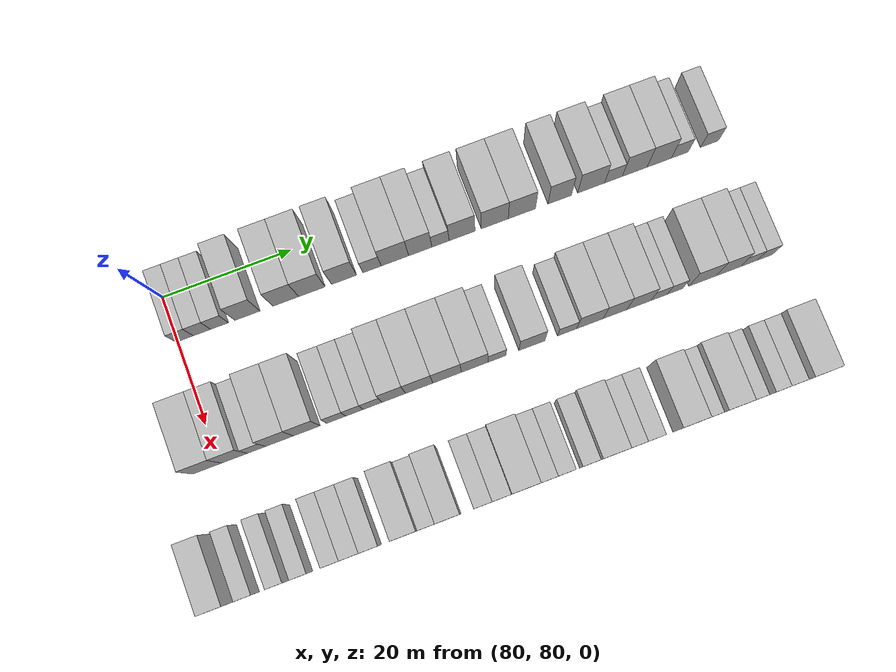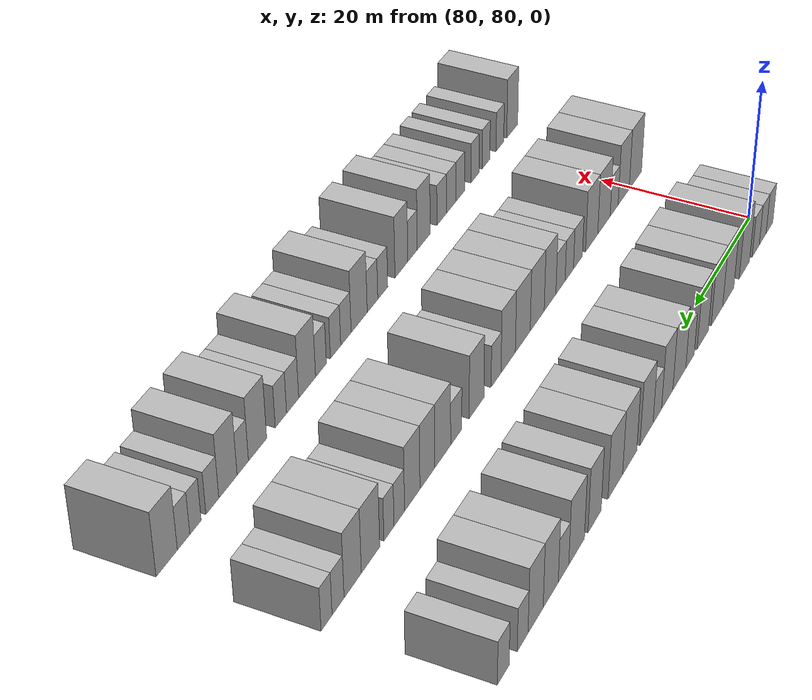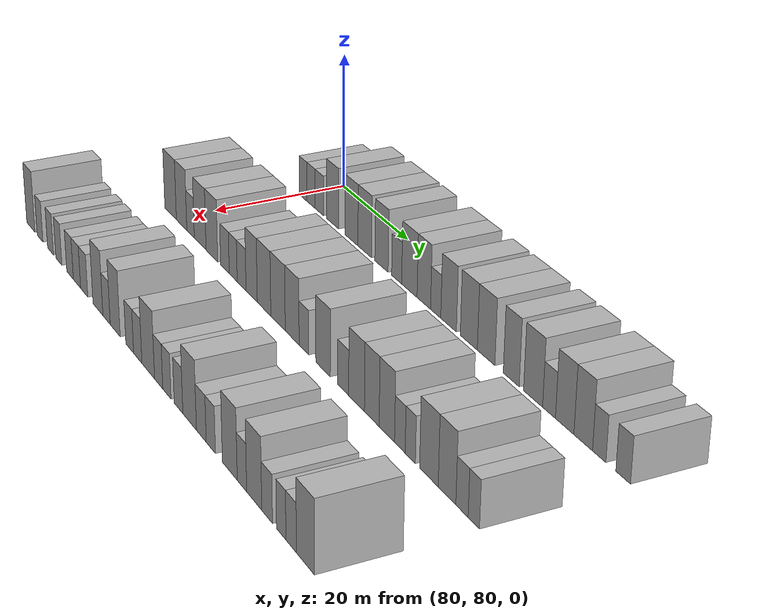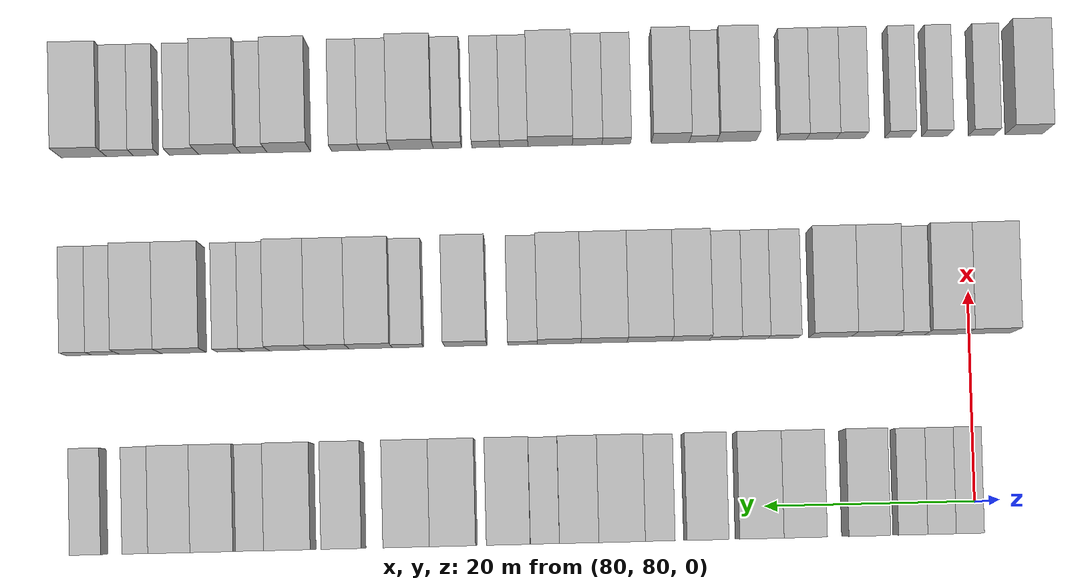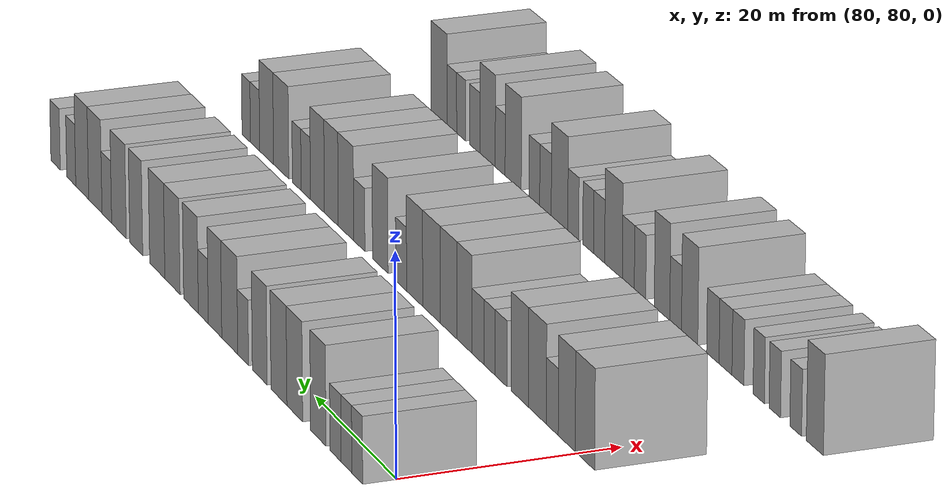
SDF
<sdf version="1.6">
 <world name="default">
  <model name="building_628">
   <static>1</static>
   <pose>82.0000 81.1683 0 0.000000 0.000000 0.000000</pose>
   <link name="link">
    <pose>0 0 3.00 0 0 0</pose>
    <collision name="collision"><geometry><box><size>10.0000 2.6356 6.0000</size></box></geometry></collision>
    <visual name="visual">
     <cast_shadows>0</cast_shadows>
     <geometry><box><size>10.0000 2.6356 6.0000</size></box></geometry>
     <material>
      <script>
       <uri>model://HANNAS_wall/materials/scripts</uri>
       <uri>model://HANNAS_wall/materials/textures</uri>
       <name>vrc/HANNAS_wall</name>
      </script>
     </material>
    </visual>
   </link>
  </model>
  <model name="building_629">
   <static>1</static>
   <pose>82.0000 83.8183 0 0.000000 0.000000 0.000000</pose>
   <link name="link">
    <pose>0 0 3.00 0 0 0</pose>
    <collision name="collision"><geometry><box><size>10.0000 2.6646 6.0000</size></box></geometry></collision>
    <visual name="visual">
     <cast_shadows>0</cast_shadows>
     <geometry><box><size>10.0000 2.6646 6.0000</size></box></geometry>
     <material>
      <script>
       <uri>model://HANNAS_wall/materials/scripts</uri>
       <uri>model://HANNAS_wall/materials/textures</uri>
       <name>vrc/HANNAS_wall</name>
      </script>
     </material>
    </visual>
   </link>
  </model>
  <model name="building_630">
   <static>1</static>
   <pose>82.0000 86.5230 0 0.000000 0.000000 0.000000</pose>
   <link name="link">
    <pose>0 0 3.00 0 0 0</pose>
    <collision name="collision"><geometry><box><size>10.0000 2.7448 6.0000</size></box></geometry></collision>
    <visual name="visual">
     <cast_shadows>0</cast_shadows>
     <geometry><box><size>10.0000 2.7448 6.0000</size></box></geometry>
     <material>
      <script>
       <uri>model://HANNAS_wall/materials/scripts</uri>
       <uri>model://HANNAS_wall/materials/textures</uri>
       <name>vrc/HANNAS_wall</name>
      </script>
     </material>
    </visual>
   </link>
  </model>
  <model name="building_631">
   <static>1</static>
   <pose>82.0000 90.8380 0 0.000000 0.000000 0.000000</pose>
   <link name="link">
    <pose>0 0 4.50 0 0 0</pose>
    <collision name="collision"><geometry><box><size>10.0000 3.8850 9.0000</size></box></geometry></collision>
    <visual name="visual">
     <cast_shadows>0</cast_shadows>
     <geometry><box><size>10.0000 3.8850 9.0000</size></box></geometry>
     <material>
      <script>
       <uri>model://HANNAS_wall/materials/scripts</uri>
       <uri>model://HANNAS_wall/materials/textures</uri>
       <name>vrc/HANNAS_wall</name>
      </script>
     </material>
    </visual>
   </link>
  </model>
  <model name="building_632">
   <static>1</static>
   <pose>82.0000 96.7917 0 0.000000 0.000000 0.000000</pose>
   <link name="link">
    <pose>0 0 4.50 0 0 0</pose>
    <collision name="collision"><geometry><box><size>10.0000 4.0225 9.0000</size></box></geometry></collision>
    <visual name="visual">
     <cast_shadows>0</cast_shadows>
     <geometry><box><size>10.0000 4.0225 9.0000</size></box></geometry>
     <material>
      <script>
       <uri>model://HANNAS_wall/materials/scripts</uri>
       <uri>model://HANNAS_wall/materials/textures</uri>
       <name>vrc/HANNAS_wall</name>
      </script>
     </material>
    </visual>
   </link>
  </model>
  <model name="building_633">
   <static>1</static>
   <pose>82.0000 100.8646 0 0.000000 0.000000 0.000000</pose>
   <link name="link">
    <pose>0 0 4.50 0 0 0</pose>
    <collision name="collision"><geometry><box><size>10.0000 4.1232 9.0000</size></box></geometry></collision>
    <visual name="visual">
     <cast_shadows>0</cast_shadows>
     <geometry><box><size>10.0000 4.1232 9.0000</size></box></geometry>
     <material>
      <script>
       <uri>model://HANNAS_wall/materials/scripts</uri>
       <uri>model://HANNAS_wall/materials/textures</uri>
       <name>vrc/HANNAS_wall</name>
      </script>
     </material>
    </visual>
   </link>
  </model>
  <model name="building_634">
   <static>1</static>
   <pose>82.0000 105.8771 0 0.000000 0.000000 0.000000</pose>
   <link name="link">
    <pose>0 0 4.50 0 0 0</pose>
    <collision name="collision"><geometry><box><size>10.0000 3.9018 9.0000</size></box></geometry></collision>
    <visual name="visual">
     <cast_shadows>0</cast_shadows>
     <geometry><box><size>10.0000 3.9018 9.0000</size></box></geometry>
     <material>
      <script>
       <uri>model://HANNAS_wall/materials/scripts</uri>
       <uri>model://HANNAS_wall/materials/textures</uri>
       <name>vrc/HANNAS_wall</name>
      </script>
     </material>
    </visual>
   </link>
  </model>
  <model name="building_635">
   <static>1</static>
   <pose>82.0000 110.2610 0 0.000000 0.000000 0.000000</pose>
   <link name="link">
    <pose>0 0 3.00 0 0 0</pose>
    <collision name="collision"><geometry><box><size>10.0000 2.8659 6.0000</size></box></geometry></collision>
    <visual name="visual">
     <cast_shadows>0</cast_shadows>
     <geometry><box><size>10.0000 2.8659 6.0000</size></box></geometry>
     <material>
      <script>
       <uri>model://HANNAS_wall/materials/scripts</uri>
       <uri>model://HANNAS_wall/materials/textures</uri>
       <name>vrc/HANNAS_wall</name>
      </script>
     </material>
    </visual>
   </link>
  </model>
  <model name="building_636">
   <static>1</static>
   <pose>82.0000 113.8494 0 0.000000 0.000000 0.000000</pose>
   <link name="link">
    <pose>0 0 4.50 0 0 0</pose>
    <collision name="collision"><geometry><box><size>10.0000 4.3110 9.0000</size></box></geometry></collision>
    <visual name="visual">
     <cast_shadows>0</cast_shadows>
     <geometry><box><size>10.0000 4.3110 9.0000</size></box></geometry>
     <material>
      <script>
       <uri>model://HANNAS_wall/materials/scripts</uri>
       <uri>model://HANNAS_wall/materials/textures</uri>
       <name>vrc/HANNAS_wall</name>
      </script>
     </material>
    </visual>
   </link>
  </model>
  <model name="building_637">
   <static>1</static>
   <pose>82.0000 117.8396 0 0.000000 0.000000 0.000000</pose>
   <link name="link">
    <pose>0 0 4.50 0 0 0</pose>
    <collision name="collision"><geometry><box><size>10.0000 3.6695 9.0000</size></box></geometry></collision>
    <visual name="visual">
     <cast_shadows>0</cast_shadows>
     <geometry><box><size>10.0000 3.6695 9.0000</size></box></geometry>
     <material>
      <script>
       <uri>model://HANNAS_wall/materials/scripts</uri>
       <uri>model://HANNAS_wall/materials/textures</uri>
       <name>vrc/HANNAS_wall</name>
      </script>
     </material>
    </visual>
   </link>
  </model>
  <model name="building_638">
   <static>1</static>
   <pose>82.0000 121.0335 0 0.000000 0.000000 0.000000</pose>
   <link name="link">
    <pose>0 0 3.00 0 0 0</pose>
    <collision name="collision"><geometry><box><size>10.0000 2.7182 6.0000</size></box></geometry></collision>
    <visual name="visual">
     <cast_shadows>0</cast_shadows>
     <geometry><box><size>10.0000 2.7182 6.0000</size></box></geometry>
     <material>
      <script>
       <uri>model://HANNAS_wall/materials/scripts</uri>
       <uri>model://HANNAS_wall/materials/textures</uri>
       <name>vrc/HANNAS_wall</name>
      </script>
     </material>
    </visual>
   </link>
  </model>
  <model name="building_639">
   <static>1</static>
   <pose>82.0000 124.4314 0 0.000000 0.000000 0.000000</pose>
   <link name="link">
    <pose>0 0 4.50 0 0 0</pose>
    <collision name="collision"><geometry><box><size>10.0000 4.0777 9.0000</size></box></geometry></collision>
    <visual name="visual">
     <cast_shadows>0</cast_shadows>
     <geometry><box><size>10.0000 4.0777 9.0000</size></box></geometry>
     <material>
      <script>
       <uri>model://HANNAS_wall/materials/scripts</uri>
       <uri>model://HANNAS_wall/materials/textures</uri>
       <name>vrc/HANNAS_wall</name>
      </script>
     </material>
    </visual>
   </link>
  </model>
  <model name="building_640">
   <static>1</static>
   <pose>82.0000 129.6138 0 0.000000 0.000000 0.000000</pose>
   <link name="link">
    <pose>0 0 4.50 0 0 0</pose>
    <collision name="collision"><geometry><box><size>10.0000 4.2871 9.0000</size></box></geometry></collision>
    <visual name="visual">
     <cast_shadows>0</cast_shadows>
     <geometry><box><size>10.0000 4.2871 9.0000</size></box></geometry>
     <material>
      <script>
       <uri>model://HANNAS_wall/materials/scripts</uri>
       <uri>model://HANNAS_wall/materials/textures</uri>
       <name>vrc/HANNAS_wall</name>
      </script>
     </material>
    </visual>
   </link>
  </model>
  <model name="building_641">
   <static>1</static>
   <pose>82.0000 133.9190 0 0.000000 0.000000 0.000000</pose>
   <link name="link">
    <pose>0 0 4.50 0 0 0</pose>
    <collision name="collision"><geometry><box><size>10.0000 4.3233 9.0000</size></box></geometry></collision>
    <visual name="visual">
     <cast_shadows>0</cast_shadows>
     <geometry><box><size>10.0000 4.3233 9.0000</size></box></geometry>
     <material>
      <script>
       <uri>model://HANNAS_wall/materials/scripts</uri>
       <uri>model://HANNAS_wall/materials/textures</uri>
       <name>vrc/HANNAS_wall</name>
      </script>
     </material>
    </visual>
   </link>
  </model>
  <model name="building_642">
   <static>1</static>
   <pose>82.0000 139.9593 0 0.000000 0.000000 0.000000</pose>
   <link name="link">
    <pose>0 0 4.50 0 0 0</pose>
    <collision name="collision"><geometry><box><size>10.0000 3.7571 9.0000</size></box></geometry></collision>
    <visual name="visual">
     <cast_shadows>0</cast_shadows>
     <geometry><box><size>10.0000 3.7571 9.0000</size></box></geometry>
     <material>
      <script>
       <uri>model://HANNAS_wall/materials/scripts</uri>
       <uri>model://HANNAS_wall/materials/textures</uri>
       <name>vrc/HANNAS_wall</name>
      </script>
     </material>
    </visual>
   </link>
  </model>
  <model name="building_643">
   <static>1</static>
   <pose>82.0000 145.0014 0 0.000000 0.000000 0.000000</pose>
   <link name="link">
    <pose>0 0 4.50 0 0 0</pose>
    <collision name="collision"><geometry><box><size>10.0000 4.3272 9.0000</size></box></geometry></collision>
    <visual name="visual">
     <cast_shadows>0</cast_shadows>
     <geometry><box><size>10.0000 4.3272 9.0000</size></box></geometry>
     <material>
      <script>
       <uri>model://HANNAS_wall/materials/scripts</uri>
       <uri>model://HANNAS_wall/materials/textures</uri>
       <name>vrc/HANNAS_wall</name>
      </script>
     </material>
    </visual>
   </link>
  </model>
  <model name="building_644">
   <static>1</static>
   <pose>82.0000 148.5872 0 0.000000 0.000000 0.000000</pose>
   <link name="link">
    <pose>0 0 3.00 0 0 0</pose>
    <collision name="collision"><geometry><box><size>10.0000 2.8444 6.0000</size></box></geometry></collision>
    <visual name="visual">
     <cast_shadows>0</cast_shadows>
     <geometry><box><size>10.0000 2.8444 6.0000</size></box></geometry>
     <material>
      <script>
       <uri>model://HANNAS_wall/materials/scripts</uri>
       <uri>model://HANNAS_wall/materials/textures</uri>
       <name>vrc/HANNAS_wall</name>
      </script>
     </material>
    </visual>
   </link>
  </model>
  <model name="building_645">
   <static>1</static>
   <pose>82.0000 152.0069 0 0.000000 0.000000 0.000000</pose>
   <link name="link">
    <pose>0 0 4.50 0 0 0</pose>
    <collision name="collision"><geometry><box><size>10.0000 3.9950 9.0000</size></box></geometry></collision>
    <visual name="visual">
     <cast_shadows>0</cast_shadows>
     <geometry><box><size>10.0000 3.9950 9.0000</size></box></geometry>
     <material>
      <script>
       <uri>model://HANNAS_wall/materials/scripts</uri>
       <uri>model://HANNAS_wall/materials/textures</uri>
       <name>vrc/HANNAS_wall</name>
      </script>
     </material>
    </visual>
   </link>
  </model>
  <model name="building_646">
   <static>1</static>
   <pose>82.0000 155.9599 0 0.000000 0.000000 0.000000</pose>
   <link name="link">
    <pose>0 0 4.50 0 0 0</pose>
    <collision name="collision"><geometry><box><size>10.0000 3.9110 9.0000</size></box></geometry></collision>
    <visual name="visual">
     <cast_shadows>0</cast_shadows>
     <geometry><box><size>10.0000 3.9110 9.0000</size></box></geometry>
     <material>
      <script>
       <uri>model://HANNAS_wall/materials/scripts</uri>
       <uri>model://HANNAS_wall/materials/textures</uri>
       <name>vrc/HANNAS_wall</name>
      </script>
     </material>
    </visual>
   </link>
  </model>
  <model name="building_647">
   <static>1</static>
   <pose>82.0000 159.2857 0 0.000000 0.000000 0.000000</pose>
   <link name="link">
    <pose>0 0 3.00 0 0 0</pose>
    <collision name="collision"><geometry><box><size>10.0000 2.7406 6.0000</size></box></geometry></collision>
    <visual name="visual">
     <cast_shadows>0</cast_shadows>
     <geometry><box><size>10.0000 2.7406 6.0000</size></box></geometry>
     <material>
      <script>
       <uri>model://HANNAS_wall/materials/scripts</uri>
       <uri>model://HANNAS_wall/materials/textures</uri>
       <name>vrc/HANNAS_wall</name>
      </script>
     </material>
    </visual>
   </link>
  </model>
  <model name="building_648">
   <static>1</static>
   <pose>82.0000 164.1125 0 0.000000 0.000000 0.000000</pose>
   <link name="link">
    <pose>0 0 3.00 0 0 0</pose>
    <collision name="collision"><geometry><box><size>10.0000 2.9131 6.0000</size></box></geometry></collision>
    <visual name="visual">
     <cast_shadows>0</cast_shadows>
     <geometry><box><size>10.0000 2.9131 6.0000</size></box></geometry>
     <material>
      <script>
       <uri>model://HANNAS_wall/materials/scripts</uri>
       <uri>model://HANNAS_wall/materials/textures</uri>
       <name>vrc/HANNAS_wall</name>
      </script>
     </material>
    </visual>
   </link>
  </model>
  <model name="building_807">
   <static>1</static>
   <pose>101.0000 78.2310 0 0.000000 0.000000 0.000000</pose>
   <link name="link">
    <pose>0 0 4.50 0 0 0</pose>
    <collision name="collision"><geometry><box><size>10.0000 4.3991 9.0000</size></box></geometry></collision>
    <visual name="visual">
     <cast_shadows>0</cast_shadows>
     <geometry><box><size>10.0000 4.3991 9.0000</size></box></geometry>
     <material>
      <script>
       <uri>model://HANNAS_wall/materials/scripts</uri>
       <uri>model://HANNAS_wall/materials/textures</uri>
       <name>vrc/HANNAS_wall</name>
      </script>
     </material>
    </visual>
   </link>
  </model>
  <model name="building_808">
   <static>1</static>
   <pose>101.0000 82.3809 0 0.000000 0.000000 0.000000</pose>
   <link name="link">
    <pose>0 0 4.50 0 0 0</pose>
    <collision name="collision"><geometry><box><size>10.0000 3.9007 9.0000</size></box></geometry></collision>
    <visual name="visual">
     <cast_shadows>0</cast_shadows>
     <geometry><box><size>10.0000 3.9007 9.0000</size></box></geometry>
     <material>
      <script>
       <uri>model://HANNAS_wall/materials/scripts</uri>
       <uri>model://HANNAS_wall/materials/textures</uri>
       <name>vrc/HANNAS_wall</name>
      </script>
     </material>
    </visual>
   </link>
  </model>
  <model name="building_809">
   <static>1</static>
   <pose>101.0000 85.7058 0 0.000000 0.000000 0.000000</pose>
   <link name="link">
    <pose>0 0 3.00 0 0 0</pose>
    <collision name="collision"><geometry><box><size>10.0000 2.7491 6.0000</size></box></geometry></collision>
    <visual name="visual">
     <cast_shadows>0</cast_shadows>
     <geometry><box><size>10.0000 2.7491 6.0000</size></box></geometry>
     <material>
      <script>
       <uri>model://HANNAS_wall/materials/scripts</uri>
       <uri>model://HANNAS_wall/materials/textures</uri>
       <name>vrc/HANNAS_wall</name>
      </script>
     </material>
    </visual>
   </link>
  </model>
  <model name="building_810">
   <static>1</static>
   <pose>101.0000 89.1925 0 0.000000 0.000000 0.000000</pose>
   <link name="link">
    <pose>0 0 4.50 0 0 0</pose>
    <collision name="collision"><geometry><box><size>10.0000 4.2241 9.0000</size></box></geometry></collision>
    <visual name="visual">
     <cast_shadows>0</cast_shadows>
     <geometry><box><size>10.0000 4.2241 9.0000</size></box></geometry>
     <material>
      <script>
       <uri>model://HANNAS_wall/materials/scripts</uri>
       <uri>model://HANNAS_wall/materials/textures</uri>
       <name>vrc/HANNAS_wall</name>
      </script>
     </material>
    </visual>
   </link>
  </model>
  <model name="building_811">
   <static>1</static>
   <pose>101.0000 93.3438 0 0.000000 0.000000 0.000000</pose>
   <link name="link">
    <pose>0 0 4.50 0 0 0</pose>
    <collision name="collision"><geometry><box><size>10.0000 4.0786 9.0000</size></box></geometry></collision>
    <visual name="visual">
     <cast_shadows>0</cast_shadows>
     <geometry><box><size>10.0000 4.0786 9.0000</size></box></geometry>
     <material>
      <script>
       <uri>model://HANNAS_wall/materials/scripts</uri>
       <uri>model://HANNAS_wall/materials/textures</uri>
       <name>vrc/HANNAS_wall</name>
      </script>
     </material>
    </visual>
   </link>
  </model>
  <model name="building_812">
   <static>1</static>
   <pose>101.0000 97.8480 0 0.000000 0.000000 0.000000</pose>
   <link name="link">
    <pose>0 0 3.00 0 0 0</pose>
    <collision name="collision"><geometry><box><size>10.0000 2.9297 6.0000</size></box></geometry></collision>
    <visual name="visual">
     <cast_shadows>0</cast_shadows>
     <geometry><box><size>10.0000 2.9297 6.0000</size></box></geometry>
     <material>
      <script>
       <uri>model://HANNAS_wall/materials/scripts</uri>
       <uri>model://HANNAS_wall/materials/textures</uri>
       <name>vrc/HANNAS_wall</name>
      </script>
     </material>
    </visual>
   </link>
  </model>
  <model name="building_813">
   <static>1</static>
   <pose>101.0000 100.6434 0 0.000000 0.000000 0.000000</pose>
   <link name="link">
    <pose>0 0 3.00 0 0 0</pose>
    <collision name="collision"><geometry><box><size>10.0000 2.6611 6.0000</size></box></geometry></collision>
    <visual name="visual">
     <cast_shadows>0</cast_shadows>
     <geometry><box><size>10.0000 2.6611 6.0000</size></box></geometry>
     <material>
      <script>
       <uri>model://HANNAS_wall/materials/scripts</uri>
       <uri>model://HANNAS_wall/materials/textures</uri>
       <name>vrc/HANNAS_wall</name>
      </script>
     </material>
    </visual>
   </link>
  </model>
  <model name="building_814">
   <static>1</static>
   <pose>101.0000 103.4228 0 0.000000 0.000000 0.000000</pose>
   <link name="link">
    <pose>0 0 3.00 0 0 0</pose>
    <collision name="collision"><geometry><box><size>10.0000 2.8978 6.0000</size></box></geometry></collision>
    <visual name="visual">
     <cast_shadows>0</cast_shadows>
     <geometry><box><size>10.0000 2.8978 6.0000</size></box></geometry>
     <material>
      <script>
       <uri>model://HANNAS_wall/materials/scripts</uri>
       <uri>model://HANNAS_wall/materials/textures</uri>
       <name>vrc/HANNAS_wall</name>
      </script>
     </material>
    </visual>
   </link>
  </model>
  <model name="building_815">
   <static>1</static>
   <pose>101.0000 106.6898 0 0.000000 0.000000 0.000000</pose>
   <link name="link">
    <pose>0 0 4.50 0 0 0</pose>
    <collision name="collision"><geometry><box><size>10.0000 3.6361 9.0000</size></box></geometry></collision>
    <visual name="visual">
     <cast_shadows>0</cast_shadows>
     <geometry><box><size>10.0000 3.6361 9.0000</size></box></geometry>
     <material>
      <script>
       <uri>model://HANNAS_wall/materials/scripts</uri>
       <uri>model://HANNAS_wall/materials/textures</uri>
       <name>vrc/HANNAS_wall</name>
      </script>
     </material>
    </visual>
   </link>
  </model>
  <model name="building_816">
   <static>1</static>
   <pose>101.0000 110.6282 0 0.000000 0.000000 0.000000</pose>
   <link name="link">
    <pose>0 0 4.50 0 0 0</pose>
    <collision name="collision"><geometry><box><size>10.0000 4.2408 9.0000</size></box></geometry></collision>
    <visual name="visual">
     <cast_shadows>0</cast_shadows>
     <geometry><box><size>10.0000 4.2408 9.0000</size></box></geometry>
     <material>
      <script>
       <uri>model://HANNAS_wall/materials/scripts</uri>
       <uri>model://HANNAS_wall/materials/textures</uri>
       <name>vrc/HANNAS_wall</name>
      </script>
     </material>
    </visual>
   </link>
  </model>
  <model name="building_817">
   <static>1</static>
   <pose>101.0000 114.9552 0 0.000000 0.000000 0.000000</pose>
   <link name="link">
    <pose>0 0 4.50 0 0 0</pose>
    <collision name="collision"><geometry><box><size>10.0000 4.4132 9.0000</size></box></geometry></collision>
    <visual name="visual">
     <cast_shadows>0</cast_shadows>
     <geometry><box><size>10.0000 4.4132 9.0000</size></box></geometry>
     <material>
      <script>
       <uri>model://HANNAS_wall/materials/scripts</uri>
       <uri>model://HANNAS_wall/materials/textures</uri>
       <name>vrc/HANNAS_wall</name>
      </script>
     </material>
    </visual>
   </link>
  </model>
  <model name="building_818">
   <static>1</static>
   <pose>101.0000 119.2224 0 0.000000 0.000000 0.000000</pose>
   <link name="link">
    <pose>0 0 4.50 0 0 0</pose>
    <collision name="collision"><geometry><box><size>10.0000 4.1212 9.0000</size></box></geometry></collision>
    <visual name="visual">
     <cast_shadows>0</cast_shadows>
     <geometry><box><size>10.0000 4.1212 9.0000</size></box></geometry>
     <material>
      <script>
       <uri>model://HANNAS_wall/materials/scripts</uri>
       <uri>model://HANNAS_wall/materials/textures</uri>
       <name>vrc/HANNAS_wall</name>
      </script>
     </material>
    </visual>
   </link>
  </model>
  <model name="building_819">
   <static>1</static>
   <pose>101.0000 122.6894 0 0.000000 0.000000 0.000000</pose>
   <link name="link">
    <pose>0 0 3.00 0 0 0</pose>
    <collision name="collision"><geometry><box><size>10.0000 2.8128 6.0000</size></box></geometry></collision>
    <visual name="visual">
     <cast_shadows>0</cast_shadows>
     <geometry><box><size>10.0000 2.8128 6.0000</size></box></geometry>
     <material>
      <script>
       <uri>model://HANNAS_wall/materials/scripts</uri>
       <uri>model://HANNAS_wall/materials/textures</uri>
       <name>vrc/HANNAS_wall</name>
      </script>
     </material>
    </visual>
   </link>
  </model>
  <model name="building_820">
   <static>1</static>
   <pose>101.0000 128.1219 0 0.000000 0.000000 0.000000</pose>
   <link name="link">
    <pose>0 0 4.50 0 0 0</pose>
    <collision name="collision"><geometry><box><size>10.0000 4.0523 9.0000</size></box></geometry></collision>
    <visual name="visual">
     <cast_shadows>0</cast_shadows>
     <geometry><box><size>10.0000 4.0523 9.0000</size></box></geometry>
     <material>
      <script>
       <uri>model://HANNAS_wall/materials/scripts</uri>
       <uri>model://HANNAS_wall/materials/textures</uri>
       <name>vrc/HANNAS_wall</name>
      </script>
     </material>
    </visual>
   </link>
  </model>
  <model name="building_821">
   <static>1</static>
   <pose>101.0000 133.6405 0 0.000000 0.000000 0.000000</pose>
   <link name="link">
    <pose>0 0 3.00 0 0 0</pose>
    <collision name="collision"><geometry><box><size>10.0000 2.9847 6.0000</size></box></geometry></collision>
    <visual name="visual">
     <cast_shadows>0</cast_shadows>
     <geometry><box><size>10.0000 2.9847 6.0000</size></box></geometry>
     <material>
      <script>
       <uri>model://HANNAS_wall/materials/scripts</uri>
       <uri>model://HANNAS_wall/materials/textures</uri>
       <name>vrc/HANNAS_wall</name>
      </script>
     </material>
    </visual>
   </link>
  </model>
  <model name="building_822">
   <static>1</static>
   <pose>101.0000 137.2099 0 0.000000 0.000000 0.000000</pose>
   <link name="link">
    <pose>0 0 4.50 0 0 0</pose>
    <collision name="collision"><geometry><box><size>10.0000 4.1541 9.0000</size></box></geometry></collision>
    <visual name="visual">
     <cast_shadows>0</cast_shadows>
     <geometry><box><size>10.0000 4.1541 9.0000</size></box></geometry>
     <material>
      <script>
       <uri>model://HANNAS_wall/materials/scripts</uri>
       <uri>model://HANNAS_wall/materials/textures</uri>
       <name>vrc/HANNAS_wall</name>
      </script>
     </material>
    </visual>
   </link>
  </model>
  <model name="building_823">
   <static>1</static>
   <pose>101.0000 141.1673 0 0.000000 0.000000 0.000000</pose>
   <link name="link">
    <pose>0 0 4.50 0 0 0</pose>
    <collision name="collision"><geometry><box><size>10.0000 3.7607 9.0000</size></box></geometry></collision>
    <visual name="visual">
     <cast_shadows>0</cast_shadows>
     <geometry><box><size>10.0000 3.7607 9.0000</size></box></geometry>
     <material>
      <script>
       <uri>model://HANNAS_wall/materials/scripts</uri>
       <uri>model://HANNAS_wall/materials/textures</uri>
       <name>vrc/HANNAS_wall</name>
      </script>
     </material>
    </visual>
   </link>
  </model>
  <model name="building_824">
   <static>1</static>
   <pose>101.0000 144.9639 0 0.000000 0.000000 0.000000</pose>
   <link name="link">
    <pose>0 0 4.50 0 0 0</pose>
    <collision name="collision"><geometry><box><size>10.0000 3.8325 9.0000</size></box></geometry></collision>
    <visual name="visual">
     <cast_shadows>0</cast_shadows>
     <geometry><box><size>10.0000 3.8325 9.0000</size></box></geometry>
     <material>
      <script>
       <uri>model://HANNAS_wall/materials/scripts</uri>
       <uri>model://HANNAS_wall/materials/textures</uri>
       <name>vrc/HANNAS_wall</name>
      </script>
     </material>
    </visual>
   </link>
  </model>
  <model name="building_825">
   <static>1</static>
   <pose>101.0000 148.1698 0 0.000000 0.000000 0.000000</pose>
   <link name="link">
    <pose>0 0 3.00 0 0 0</pose>
    <collision name="collision"><geometry><box><size>10.0000 2.5792 6.0000</size></box></geometry></collision>
    <visual name="visual">
     <cast_shadows>0</cast_shadows>
     <geometry><box><size>10.0000 2.5792 6.0000</size></box></geometry>
     <material>
      <script>
       <uri>model://HANNAS_wall/materials/scripts</uri>
       <uri>model://HANNAS_wall/materials/textures</uri>
       <name>vrc/HANNAS_wall</name>
      </script>
     </material>
    </visual>
   </link>
  </model>
  <model name="building_826">
   <static>1</static>
   <pose>101.0000 150.6789 0 0.000000 0.000000 0.000000</pose>
   <link name="link">
    <pose>0 0 3.00 0 0 0</pose>
    <collision name="collision"><geometry><box><size>10.0000 2.4391 6.0000</size></box></geometry></collision>
    <visual name="visual">
     <cast_shadows>0</cast_shadows>
     <geometry><box><size>10.0000 2.4391 6.0000</size></box></geometry>
     <material>
      <script>
       <uri>model://HANNAS_wall/materials/scripts</uri>
       <uri>model://HANNAS_wall/materials/textures</uri>
       <name>vrc/HANNAS_wall</name>
      </script>
     </material>
    </visual>
   </link>
  </model>
  <model name="building_827">
   <static>1</static>
   <pose>101.0000 155.0475 0 0.000000 0.000000 0.000000</pose>
   <link name="link">
    <pose>0 0 4.50 0 0 0</pose>
    <collision name="collision"><geometry><box><size>10.0000 4.2983 9.0000</size></box></geometry></collision>
    <visual name="visual">
     <cast_shadows>0</cast_shadows>
     <geometry><box><size>10.0000 4.2983 9.0000</size></box></geometry>
     <material>
      <script>
       <uri>model://HANNAS_wall/materials/scripts</uri>
       <uri>model://HANNAS_wall/materials/textures</uri>
       <name>vrc/HANNAS_wall</name>
      </script>
     </material>
    </visual>
   </link>
  </model>
  <model name="building_828">
   <static>1</static>
   <pose>101.0000 159.1729 0 0.000000 0.000000 0.000000</pose>
   <link name="link">
    <pose>0 0 4.50 0 0 0</pose>
    <collision name="collision"><geometry><box><size>10.0000 3.9525 9.0000</size></box></geometry></collision>
    <visual name="visual">
     <cast_shadows>0</cast_shadows>
     <geometry><box><size>10.0000 3.9525 9.0000</size></box></geometry>
     <material>
      <script>
       <uri>model://HANNAS_wall/materials/scripts</uri>
       <uri>model://HANNAS_wall/materials/textures</uri>
       <name>vrc/HANNAS_wall</name>
      </script>
     </material>
    </visual>
   </link>
  </model>
  <model name="building_829">
   <static>1</static>
   <pose>101.0000 162.4895 0 0.000000 0.000000 0.000000</pose>
   <link name="link">
    <pose>0 0 3.00 0 0 0</pose>
    <collision name="collision"><geometry><box><size>10.0000 2.6808 6.0000</size></box></geometry></collision>
    <visual name="visual">
     <cast_shadows>0</cast_shadows>
     <geometry><box><size>10.0000 2.6808 6.0000</size></box></geometry>
     <material>
      <script>
       <uri>model://HANNAS_wall/materials/scripts</uri>
       <uri>model://HANNAS_wall/materials/textures</uri>
       <name>vrc/HANNAS_wall</name>
      </script>
     </material>
    </visual>
   </link>
  </model>
  <model name="building_830">
   <static>1</static>
   <pose>101.0000 165.0482 0 0.000000 0.000000 0.000000</pose>
   <link name="link">
    <pose>0 0 3.00 0 0 0</pose>
    <collision name="collision"><geometry><box><size>10.0000 2.4367 6.0000</size></box></geometry></collision>
    <visual name="visual">
     <cast_shadows>0</cast_shadows>
     <geometry><box><size>10.0000 2.4367 6.0000</size></box></geometry>
     <material>
      <script>
       <uri>model://HANNAS_wall/materials/scripts</uri>
       <uri>model://HANNAS_wall/materials/textures</uri>
       <name>vrc/HANNAS_wall</name>
      </script>
     </material>
    </visual>
   </link>
  </model>
  <model name="building_989">
   <static>1</static>
   <pose>120.0000 74.2046 0 0.000000 0.000000 0.000000</pose>
   <link name="link">
    <pose>0 0 4.50 0 0 0</pose>
    <collision name="collision"><geometry><box><size>10.0000 3.6197 9.0000</size></box></geometry></collision>
    <visual name="visual">
     <cast_shadows>0</cast_shadows>
     <geometry><box><size>10.0000 3.6197 9.0000</size></box></geometry>
     <material>
      <script>
       <uri>model://HANNAS_wall/materials/scripts</uri>
       <uri>model://HANNAS_wall/materials/textures</uri>
       <name>vrc/HANNAS_wall</name>
      </script>
     </material>
    </visual>
   </link>
  </model>
  <model name="building_990">
   <static>1</static>
   <pose>120.0000 78.2719 0 0.000000 0.000000 0.000000</pose>
   <link name="link">
    <pose>0 0 3.00 0 0 0</pose>
    <collision name="collision"><geometry><box><size>10.0000 2.5148 6.0000</size></box></geometry></collision>
    <visual name="visual">
     <cast_shadows>0</cast_shadows>
     <geometry><box><size>10.0000 2.5148 6.0000</size></box></geometry>
     <material>
      <script>
       <uri>model://HANNAS_wall/materials/scripts</uri>
       <uri>model://HANNAS_wall/materials/textures</uri>
       <name>vrc/HANNAS_wall</name>
      </script>
     </material>
    </visual>
   </link>
  </model>
  <model name="building_991">
   <static>1</static>
   <pose>120.0000 82.7767 0 0.000000 0.000000 0.000000</pose>
   <link name="link">
    <pose>0 0 3.00 0 0 0</pose>
    <collision name="collision"><geometry><box><size>10.0000 2.4948 6.0000</size></box></geometry></collision>
    <visual name="visual">
     <cast_shadows>0</cast_shadows>
     <geometry><box><size>10.0000 2.4948 6.0000</size></box></geometry>
     <material>
      <script>
       <uri>model://HANNAS_wall/materials/scripts</uri>
       <uri>model://HANNAS_wall/materials/textures</uri>
       <name>vrc/HANNAS_wall</name>
      </script>
     </material>
    </visual>
   </link>
  </model>
  <model name="building_992">
   <static>1</static>
   <pose>120.0000 86.2708 0 0.000000 0.000000 0.000000</pose>
   <link name="link">
    <pose>0 0 3.00 0 0 0</pose>
    <collision name="collision"><geometry><box><size>10.0000 2.4936 6.0000</size></box></geometry></collision>
    <visual name="visual">
     <cast_shadows>0</cast_shadows>
     <geometry><box><size>10.0000 2.4936 6.0000</size></box></geometry>
     <material>
      <script>
       <uri>model://HANNAS_wall/materials/scripts</uri>
       <uri>model://HANNAS_wall/materials/textures</uri>
       <name>vrc/HANNAS_wall</name>
      </script>
     </material>
    </visual>
   </link>
  </model>
  <model name="building_993">
   <static>1</static>
   <pose>120.0000 90.8525 0 0.000000 0.000000 0.000000</pose>
   <link name="link">
    <pose>0 0 3.00 0 0 0</pose>
    <collision name="collision"><geometry><box><size>10.0000 2.6698 6.0000</size></box></geometry></collision>
    <visual name="visual">
     <cast_shadows>0</cast_shadows>
     <geometry><box><size>10.0000 2.6698 6.0000</size></box></geometry>
     <material>
      <script>
       <uri>model://HANNAS_wall/materials/scripts</uri>
       <uri>model://HANNAS_wall/materials/textures</uri>
       <name>vrc/HANNAS_wall</name>
      </script>
     </material>
    </visual>
   </link>
  </model>
  <model name="building_994">
   <static>1</static>
   <pose>120.0000 93.6292 0 0.000000 0.000000 0.000000</pose>
   <link name="link">
    <pose>0 0 3.00 0 0 0</pose>
    <collision name="collision"><geometry><box><size>10.0000 2.8837 6.0000</size></box></geometry></collision>
    <visual name="visual">
     <cast_shadows>0</cast_shadows>
     <geometry><box><size>10.0000 2.8837 6.0000</size></box></geometry>
     <material>
      <script>
       <uri>model://HANNAS_wall/materials/scripts</uri>
       <uri>model://HANNAS_wall/materials/textures</uri>
       <name>vrc/HANNAS_wall</name>
      </script>
     </material>
    </visual>
   </link>
  </model>
  <model name="building_995">
   <static>1</static>
   <pose>120.0000 96.4716 0 0.000000 0.000000 0.000000</pose>
   <link name="link">
    <pose>0 0 3.00 0 0 0</pose>
    <collision name="collision"><geometry><box><size>10.0000 2.8010 6.0000</size></box></geometry></collision>
    <visual name="visual">
     <cast_shadows>0</cast_shadows>
     <geometry><box><size>10.0000 2.8010 6.0000</size></box></geometry>
     <material>
      <script>
       <uri>model://HANNAS_wall/materials/scripts</uri>
       <uri>model://HANNAS_wall/materials/textures</uri>
       <name>vrc/HANNAS_wall</name>
      </script>
     </material>
    </visual>
   </link>
  </model>
  <model name="building_996">
   <static>1</static>
   <pose>120.0000 101.7461 0 0.000000 0.000000 0.000000</pose>
   <link name="link">
    <pose>0 0 4.50 0 0 0</pose>
    <collision name="collision"><geometry><box><size>10.0000 3.7480 9.0000</size></box></geometry></collision>
    <visual name="visual">
     <cast_shadows>0</cast_shadows>
     <geometry><box><size>10.0000 3.7480 9.0000</size></box></geometry>
     <material>
      <script>
       <uri>model://HANNAS_wall/materials/scripts</uri>
       <uri>model://HANNAS_wall/materials/textures</uri>
       <name>vrc/HANNAS_wall</name>
      </script>
     </material>
    </visual>
   </link>
  </model>
  <model name="building_997">
   <static>1</static>
   <pose>120.0000 104.9675 0 0.000000 0.000000 0.000000</pose>
   <link name="link">
    <pose>0 0 3.00 0 0 0</pose>
    <collision name="collision"><geometry><box><size>10.0000 2.6947 6.0000</size></box></geometry></collision>
    <visual name="visual">
     <cast_shadows>0</cast_shadows>
     <geometry><box><size>10.0000 2.6947 6.0000</size></box></geometry>
     <material>
      <script>
       <uri>model://HANNAS_wall/materials/scripts</uri>
       <uri>model://HANNAS_wall/materials/textures</uri>
       <name>vrc/HANNAS_wall</name>
      </script>
     </material>
    </visual>
   </link>
  </model>
  <model name="building_998">
   <static>1</static>
   <pose>120.0000 108.1222 0 0.000000 0.000000 0.000000</pose>
   <link name="link">
    <pose>0 0 4.50 0 0 0</pose>
    <collision name="collision"><geometry><box><size>10.0000 3.6146 9.0000</size></box></geometry></collision>
    <visual name="visual">
     <cast_shadows>0</cast_shadows>
     <geometry><box><size>10.0000 3.6146 9.0000</size></box></geometry>
     <material>
      <script>
       <uri>model://HANNAS_wall/materials/scripts</uri>
       <uri>model://HANNAS_wall/materials/textures</uri>
       <name>vrc/HANNAS_wall</name>
      </script>
     </material>
    </visual>
   </link>
  </model>
  <model name="building_999">
   <static>1</static>
   <pose>120.0000 113.2889 0 0.000000 0.000000 0.000000</pose>
   <link name="link">
    <pose>0 0 3.00 0 0 0</pose>
    <collision name="collision"><geometry><box><size>10.0000 2.7189 6.0000</size></box></geometry></collision>
    <visual name="visual">
     <cast_shadows>0</cast_shadows>
     <geometry><box><size>10.0000 2.7189 6.0000</size></box></geometry>
     <material>
      <script>
       <uri>model://HANNAS_wall/materials/scripts</uri>
       <uri>model://HANNAS_wall/materials/textures</uri>
       <name>vrc/HANNAS_wall</name>
      </script>
     </material>
    </visual>
   </link>
  </model>
  <model name="building_1000">
   <static>1</static>
   <pose>120.0000 116.0724 0 0.000000 0.000000 0.000000</pose>
   <link name="link">
    <pose>0 0 3.00 0 0 0</pose>
    <collision name="collision"><geometry><box><size>10.0000 2.8481 6.0000</size></box></geometry></collision>
    <visual name="visual">
     <cast_shadows>0</cast_shadows>
     <geometry><box><size>10.0000 2.8481 6.0000</size></box></geometry>
     <material>
      <script>
       <uri>model://HANNAS_wall/materials/scripts</uri>
       <uri>model://HANNAS_wall/materials/textures</uri>
       <name>vrc/HANNAS_wall</name>
      </script>
     </material>
    </visual>
   </link>
  </model>
  <model name="building_1001">
   <static>1</static>
   <pose>120.0000 119.6238 0 0.000000 0.000000 0.000000</pose>
   <link name="link">
    <pose>0 0 4.50 0 0 0</pose>
    <collision name="collision"><geometry><box><size>10.0000 4.2547 9.0000</size></box></geometry></collision>
    <visual name="visual">
     <cast_shadows>0</cast_shadows>
     <geometry><box><size>10.0000 4.2547 9.0000</size></box></geometry>
     <material>
      <script>
       <uri>model://HANNAS_wall/materials/scripts</uri>
       <uri>model://HANNAS_wall/materials/textures</uri>
       <name>vrc/HANNAS_wall</name>
      </script>
     </material>
    </visual>
   </link>
  </model>
  <model name="building_1002">
   <static>1</static>
   <pose>120.0000 123.0948 0 0.000000 0.000000 0.000000</pose>
   <link name="link">
    <pose>0 0 3.00 0 0 0</pose>
    <collision name="collision"><geometry><box><size>10.0000 2.6873 6.0000</size></box></geometry></collision>
    <visual name="visual">
     <cast_shadows>0</cast_shadows>
     <geometry><box><size>10.0000 2.6873 6.0000</size></box></geometry>
     <material>
      <script>
       <uri>model://HANNAS_wall/materials/scripts</uri>
       <uri>model://HANNAS_wall/materials/textures</uri>
       <name>vrc/HANNAS_wall</name>
      </script>
     </material>
    </visual>
   </link>
  </model>
  <model name="building_1003">
   <static>1</static>
   <pose>120.0000 125.7658 0 0.000000 0.000000 0.000000</pose>
   <link name="link">
    <pose>0 0 3.00 0 0 0</pose>
    <collision name="collision"><geometry><box><size>10.0000 2.6547 6.0000</size></box></geometry></collision>
    <visual name="visual">
     <cast_shadows>0</cast_shadows>
     <geometry><box><size>10.0000 2.6547 6.0000</size></box></geometry>
     <material>
      <script>
       <uri>model://HANNAS_wall/materials/scripts</uri>
       <uri>model://HANNAS_wall/materials/textures</uri>
       <name>vrc/HANNAS_wall</name>
      </script>
     </material>
    </visual>
   </link>
  </model>
  <model name="building_1004">
   <static>1</static>
   <pose>120.0000 129.4470 0 0.000000 0.000000 0.000000</pose>
   <link name="link">
    <pose>0 0 3.00 0 0 0</pose>
    <collision name="collision"><geometry><box><size>10.0000 2.7077 6.0000</size></box></geometry></collision>
    <visual name="visual">
     <cast_shadows>0</cast_shadows>
     <geometry><box><size>10.0000 2.7077 6.0000</size></box></geometry>
     <material>
      <script>
       <uri>model://HANNAS_wall/materials/scripts</uri>
       <uri>model://HANNAS_wall/materials/textures</uri>
       <name>vrc/HANNAS_wall</name>
      </script>
     </material>
    </visual>
   </link>
  </model>
  <model name="building_1005">
   <static>1</static>
   <pose>120.0000 132.8755 0 0.000000 0.000000 0.000000</pose>
   <link name="link">
    <pose>0 0 4.50 0 0 0</pose>
    <collision name="collision"><geometry><box><size>10.0000 4.1492 9.0000</size></box></geometry></collision>
    <visual name="visual">
     <cast_shadows>0</cast_shadows>
     <geometry><box><size>10.0000 4.1492 9.0000</size></box></geometry>
     <material>
      <script>
       <uri>model://HANNAS_wall/materials/scripts</uri>
       <uri>model://HANNAS_wall/materials/textures</uri>
       <name>vrc/HANNAS_wall</name>
      </script>
     </material>
    </visual>
   </link>
  </model>
  <model name="building_1006">
   <static>1</static>
   <pose>120.0000 136.4029 0 0.000000 0.000000 0.000000</pose>
   <link name="link">
    <pose>0 0 3.00 0 0 0</pose>
    <collision name="collision"><geometry><box><size>10.0000 2.9056 6.0000</size></box></geometry></collision>
    <visual name="visual">
     <cast_shadows>0</cast_shadows>
     <geometry><box><size>10.0000 2.9056 6.0000</size></box></geometry>
     <material>
      <script>
       <uri>model://HANNAS_wall/materials/scripts</uri>
       <uri>model://HANNAS_wall/materials/textures</uri>
       <name>vrc/HANNAS_wall</name>
      </script>
     </material>
    </visual>
   </link>
  </model>
  <model name="building_1007">
   <static>1</static>
   <pose>120.0000 139.2056 0 0.000000 0.000000 0.000000</pose>
   <link name="link">
    <pose>0 0 3.00 0 0 0</pose>
    <collision name="collision"><geometry><box><size>10.0000 2.6998 6.0000</size></box></geometry></collision>
    <visual name="visual">
     <cast_shadows>0</cast_shadows>
     <geometry><box><size>10.0000 2.6998 6.0000</size></box></geometry>
     <material>
      <script>
       <uri>model://HANNAS_wall/materials/scripts</uri>
       <uri>model://HANNAS_wall/materials/textures</uri>
       <name>vrc/HANNAS_wall</name>
      </script>
     </material>
    </visual>
   </link>
  </model>
  <model name="building_1008">
   <static>1</static>
   <pose>120.0000 144.6420 0 0.000000 0.000000 0.000000</pose>
   <link name="link">
    <pose>0 0 4.50 0 0 0</pose>
    <collision name="collision"><geometry><box><size>10.0000 4.1729 9.0000</size></box></geometry></collision>
    <visual name="visual">
     <cast_shadows>0</cast_shadows>
     <geometry><box><size>10.0000 4.1729 9.0000</size></box></geometry>
     <material>
      <script>
       <uri>model://HANNAS_wall/materials/scripts</uri>
       <uri>model://HANNAS_wall/materials/textures</uri>
       <name>vrc/HANNAS_wall</name>
      </script>
     </material>
    </visual>
   </link>
  </model>
  <model name="building_1009">
   <static>1</static>
   <pose>120.0000 148.0103 0 0.000000 0.000000 0.000000</pose>
   <link name="link">
    <pose>0 0 3.00 0 0 0</pose>
    <collision name="collision"><geometry><box><size>10.0000 2.5636 6.0000</size></box></geometry></collision>
    <visual name="visual">
     <cast_shadows>0</cast_shadows>
     <geometry><box><size>10.0000 2.5636 6.0000</size></box></geometry>
     <material>
      <script>
       <uri>model://HANNAS_wall/materials/scripts</uri>
       <uri>model://HANNAS_wall/materials/textures</uri>
       <name>vrc/HANNAS_wall</name>
      </script>
     </material>
    </visual>
   </link>
  </model>
  <model name="building_1010">
   <static>1</static>
   <pose>120.0000 151.3103 0 0.000000 0.000000 0.000000</pose>
   <link name="link">
    <pose>0 0 4.50 0 0 0</pose>
    <collision name="collision"><geometry><box><size>10.0000 4.0364 9.0000</size></box></geometry></collision>
    <visual name="visual">
     <cast_shadows>0</cast_shadows>
     <geometry><box><size>10.0000 4.0364 9.0000</size></box></geometry>
     <material>
      <script>
       <uri>model://HANNAS_wall/materials/scripts</uri>
       <uri>model://HANNAS_wall/materials/textures</uri>
       <name>vrc/HANNAS_wall</name>
      </script>
     </material>
    </visual>
   </link>
  </model>
  <model name="building_1011">
   <static>1</static>
   <pose>120.0000 154.7258 0 0.000000 0.000000 0.000000</pose>
   <link name="link">
    <pose>0 0 3.00 0 0 0</pose>
    <collision name="collision"><geometry><box><size>10.0000 2.7947 6.0000</size></box></geometry></collision>
    <visual name="visual">
     <cast_shadows>0</cast_shadows>
     <geometry><box><size>10.0000 2.7947 6.0000</size></box></geometry>
     <material>
      <script>
       <uri>model://HANNAS_wall/materials/scripts</uri>
       <uri>model://HANNAS_wall/materials/textures</uri>
       <name>vrc/HANNAS_wall</name>
      </script>
     </material>
    </visual>
   </link>
  </model>
  <model name="building_1012">
   <static>1</static>
   <pose>120.0000 158.3234 0 0.000000 0.000000 0.000000</pose>
   <link name="link">
    <pose>0 0 3.00 0 0 0</pose>
    <collision name="collision"><geometry><box><size>10.0000 2.4004 6.0000</size></box></geometry></collision>
    <visual name="visual">
     <cast_shadows>0</cast_shadows>
     <geometry><box><size>10.0000 2.4004 6.0000</size></box></geometry>
     <material>
      <script>
       <uri>model://HANNAS_wall/materials/scripts</uri>
       <uri>model://HANNAS_wall/materials/textures</uri>
       <name>vrc/HANNAS_wall</name>
      </script>
     </material>
    </visual>
   </link>
  </model>
  <model name="building_1013">
   <static>1</static>
   <pose>120.0000 160.8237 0 0.000000 0.000000 0.000000</pose>
   <link name="link">
    <pose>0 0 3.00 0 0 0</pose>
    <collision name="collision"><geometry><box><size>10.0000 2.6004 6.0000</size></box></geometry></collision>
    <visual name="visual">
     <cast_shadows>0</cast_shadows>
     <geometry><box><size>10.0000 2.6004 6.0000</size></box></geometry>
     <material>
      <script>
       <uri>model://HANNAS_wall/materials/scripts</uri>
       <uri>model://HANNAS_wall/materials/textures</uri>
       <name>vrc/HANNAS_wall</name>
      </script>
     </material>
    </visual>
   </link>
  </model>
  <model name="building_1014">
   <static>1</static>
   <pose>120.0000 164.3003 0 0.000000 0.000000 0.000000</pose>
   <link name="link">
    <pose>0 0 4.50 0 0 0</pose>
    <collision name="collision"><geometry><box><size>10.0000 4.3528 9.0000</size></box></geometry></collision>
    <visual name="visual">
     <cast_shadows>0</cast_shadows>
     <geometry><box><size>10.0000 4.3528 9.0000</size></box></geometry>
     <material>
      <script>
       <uri>model://HANNAS_wall/materials/scripts</uri>
       <uri>model://HANNAS_wall/materials/textures</uri>
       <name>vrc/HANNAS_wall</name>
      </script>
     </material>
    </visual>
   </link>
  </model>
 </world>
</sdf>
